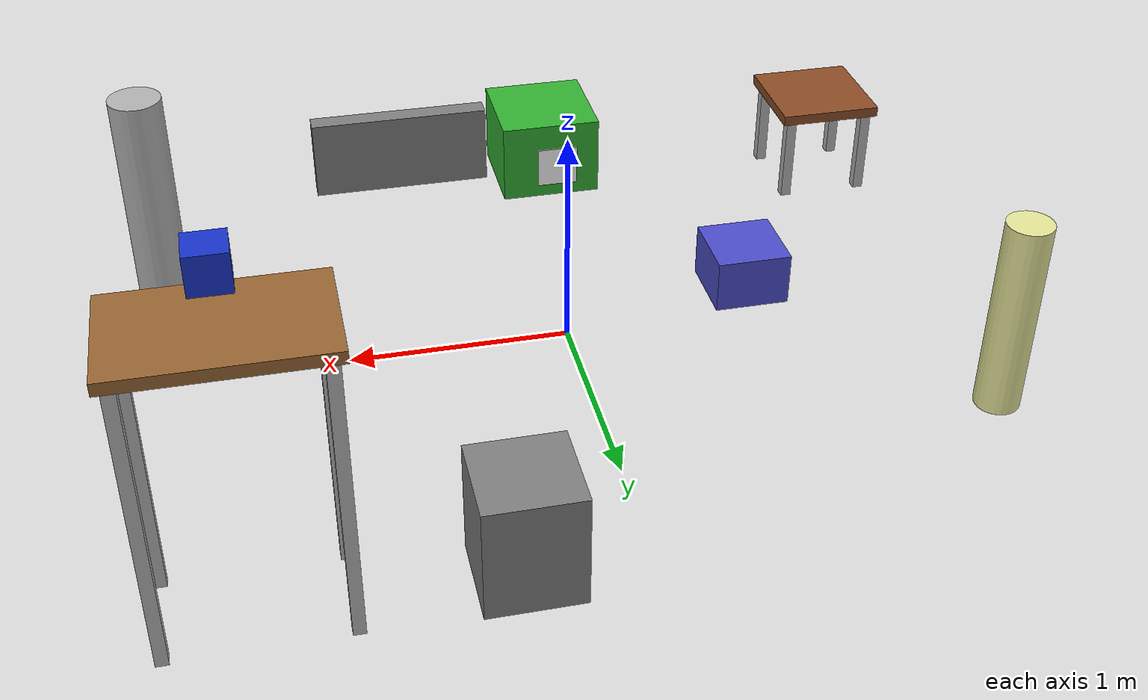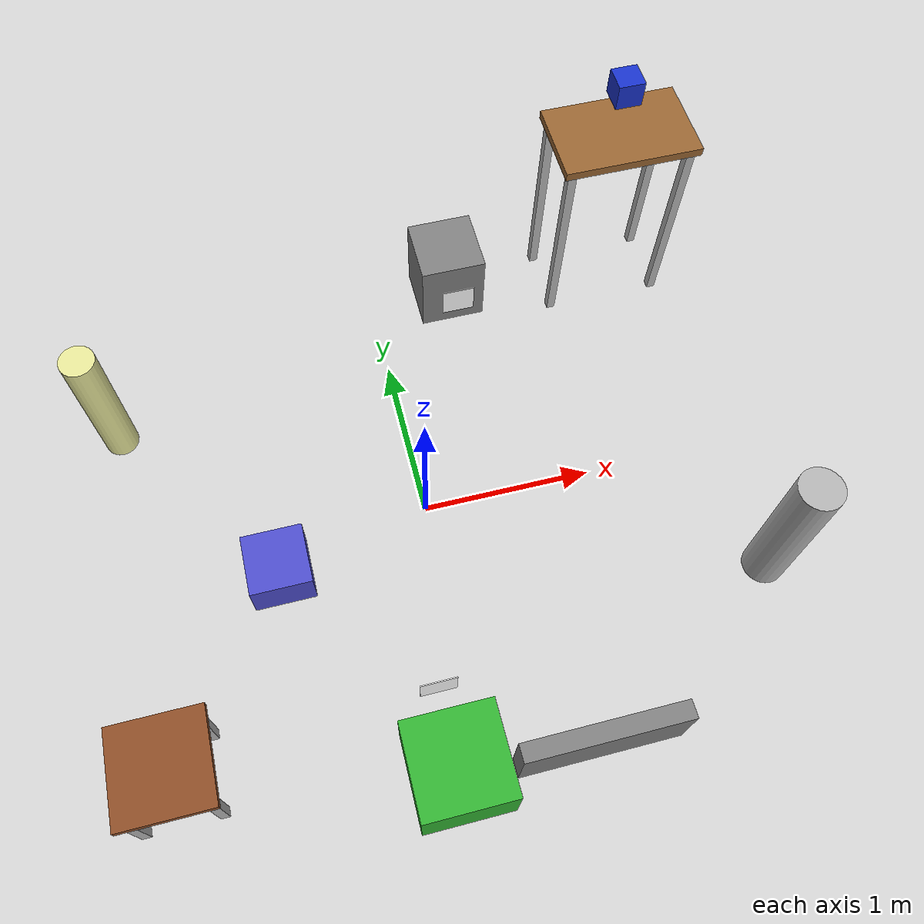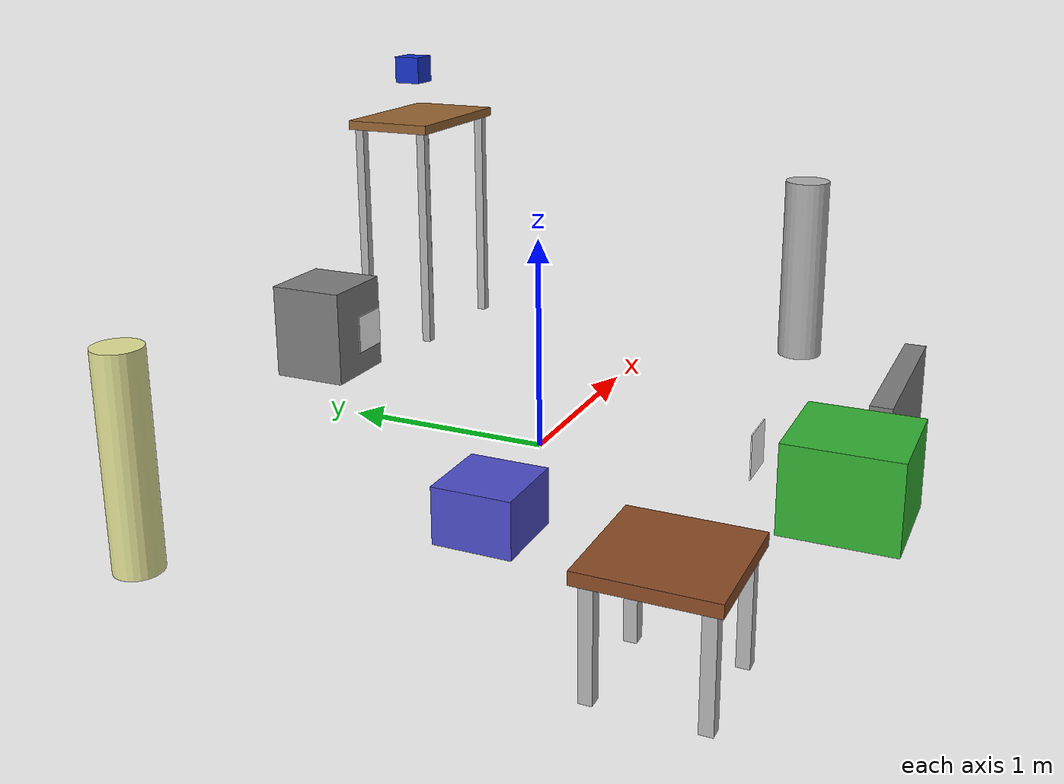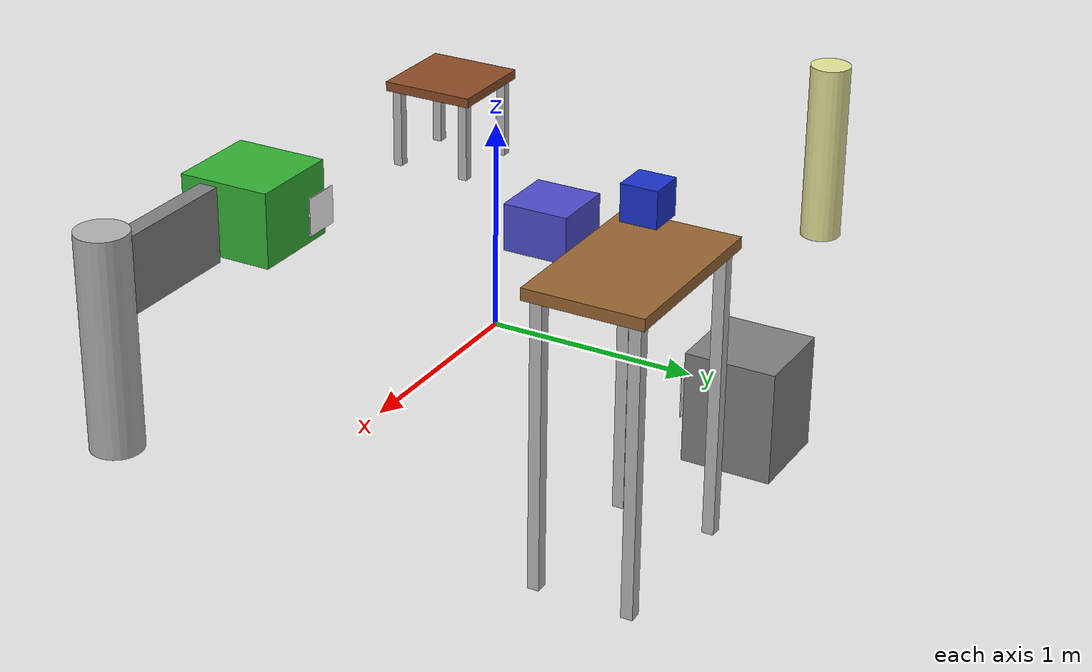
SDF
<sdf version="1.5">
 <world name="leonardo_race_field">
  <physics name="default_physics" default="0" type="ode">
   <gravity>0 0 -9.8066</gravity>
   <ode>
    <solver>
     <type>quick</type>
     <iters>10</iters>
     <sor>1.3</sor>
     <use_dynamic_moi_rescaling>0</use_dynamic_moi_rescaling>
    </solver>
    <constraints>
     <cfm>0</cfm>
     <erp>0.2</erp>
     <contact_max_correcting_vel>100</contact_max_correcting_vel>
     <contact_surface_layer>0.001</contact_surface_layer>
    </constraints>
   </ode>
   <max_step_size>0.004</max_step_size>
   <real_time_factor>1</real_time_factor>
   <real_time_update_rate>250</real_time_update_rate>
   <magnetic_field>6.0e-6 2.3e-5 -4.2e-5</magnetic_field>
  </physics>
  <light type="directional" name="sun">
   <pose>0 0 10 0 0 0</pose>
   <diffuse>0.8 0.8 0.8 1</diffuse>
   <specular>0.2 0.2 0.2 1</specular>
   <attenuation>
    <range>1000</range>
    <constant>0.9</constant>
    <linear>0.01</linear>
    <quadratic>0.001</quadratic>
   </attenuation>
   <direction>-0.5 0.1 -0.9</direction>
  </light>
  <model name="kuka_pedestal">
   <static>true</static>
   <pose>0.5 1.5 0.25 0 0 0</pose>
   <link name="link">
    <collision name="collision"><geometry><box><size>0.4 0.4 0.5</size></box></geometry></collision>
    <visual name="visual">
     <geometry><box><size>0.4 0.4 0.5</size></box></geometry>
     <material><ambient>0.4 0.4 0.4 1</ambient><diffuse>0.5 0.5 0.5 1</diffuse></material>
    </visual>
   </link>
  </model>
  <model name="rack">
   <static>true</static>
   <pose>1.5 1.45 0 0 0 0</pose>
   <link name="rack_link">
    <collision name="top_collision">
     <pose>0 0 1.25 0 0 0</pose>
     <geometry><box><size>0.8 0.5 0.05</size></box></geometry>
    </collision>
    <visual name="top_visual">
     <pose>0 0 1.25 0 0 0</pose>
     <geometry><box><size>0.8 0.5 0.05</size></box></geometry>
     <material><ambient>0.6 0.4 0.2 1</ambient><diffuse>0.6 0.4 0.2 1</diffuse></material>
    </visual>
    <collision name="leg1_collision">
     <pose>0.35 0.20 0.625 0 0 0</pose>
     <geometry><box><size>0.05 0.05 1.25</size></box></geometry>
    </collision>
    <visual name="leg1_visual">
     <pose>0.35 0.20 0.625 0 0 0</pose>
     <geometry><box><size>0.05 0.05 1.25</size></box></geometry>
    </visual>
    <collision name="leg2_collision">
     <pose>0.35 -0.20 0.625 0 0 0</pose>
     <geometry><box><size>0.05 0.05 1.25</size></box></geometry>
    </collision>
    <visual name="leg2_visual">
     <pose>0.35 -0.20 0.625 0 0 0</pose>
     <geometry><box><size>0.05 0.05 1.25</size></box></geometry>
    </visual>
    <collision name="leg3_collision">
     <pose>-0.35 0.20 0.625 0 0 0</pose>
     <geometry><box><size>0.05 0.05 1.25</size></box></geometry>
    </collision>
    <visual name="leg3_visual">
     <pose>-0.35 0.20 0.625 0 0 0</pose>
     <geometry><box><size>0.05 0.05 1.25</size></box></geometry>
    </visual>
    <collision name="leg4_collision">
     <pose>-0.35 -0.20 0.625 0 0 0</pose>
     <geometry><box><size>0.05 0.05 1.25</size></box></geometry>
    </collision>
    <visual name="leg4_visual">
     <pose>-0.35 -0.20 0.625 0 0 0</pose>
     <geometry><box><size>0.05 0.05 1.25</size></box></geometry>
    </visual>
   </link>
  </model>
  <model name="target_box">
   <static>false</static>
   <pose>1.5 1.5 1.535 0 0 0</pose>
   <link name="link">
    <inertial>
     <mass>0.3</mass>
     <inertia><ixx>0.0004</ixx><iyy>0.0004</iyy><izz>0.0004</izz><ixy>0</ixy><ixz>0</ixz><iyz>0</iyz></inertia>
    </inertial>
    <collision name="collision">
     <geometry><box><size>0.15 0.15 0.15</size></box></geometry>
     <surface>
      <friction><ode><mu>1.0</mu><mu2>1.0</mu2></ode></friction>
      <bounce><restitution_coefficient>0.0</restitution_coefficient><threshold>100000.0</threshold></bounce>
      <contact><ode><max_vel>0.0</max_vel><min_depth>0.001</min_depth></ode></contact>
     </surface>
    </collision>
    <visual name="box_visual">
     <geometry><box><size>0.15 0.15 0.15</size></box></geometry>
     <material><ambient>0.1 0.2 0.8 1</ambient><diffuse>0.1 0.2 0.8 1</diffuse></material>
    </visual>
   </link>
  </model>
  <model name="destination_pedestal">
   <static>true</static>
   <pose>-0.2 -1.5 0.2 0 0 0</pose>
   <link name="link">
    <collision name="collision"><geometry><box><size>0.5 0.5 0.4</size></box></geometry></collision>
    <visual name="visual">
     <geometry><box><size>0.5 0.5 0.4</size></box></geometry>
     <material><ambient>0.2 0.7 0.2 1</ambient><diffuse>0.2 0.7 0.2 1</diffuse></material>
    </visual>
   </link>
  </model>
  <model name="obstacle_box_2">
   <static>true</static>
   <pose>-0.9 -0.2 0.125 0 0 0</pose>
   <link name="link">
    <collision name="collision"><geometry><box><size>0.35 0.35 0.25</size></box></geometry></collision>
    <visual name="visual">
     <geometry><box><size>0.35 0.35 0.25</size></box></geometry>
     <material><ambient>0.3 0.3 0.8 1</ambient><diffuse>0.3 0.3 0.8 1</diffuse></material>
    </visual>
   </link>
  </model>
  <model name="column_1">
   <static>true</static>
   <pose>1.8 -0.8 0.5 0 0 0</pose>
   <link name="link">
    <collision name="collision">
     <geometry><cylinder><radius>0.12</radius><length>1.0</length></cylinder></geometry>
    </collision>
    <visual name="visual">
     <geometry><cylinder><radius>0.12</radius><length>1.0</length></cylinder></geometry>
     <material><ambient>0.7 0.7 0.7 1</ambient><diffuse>0.7 0.7 0.7 1</diffuse></material>
    </visual>
   </link>
  </model>
  <model name="column_2">
   <static>true</static>
   <pose>-1.7 0.9 0.45 0 0 0</pose>
   <link name="link">
    <collision name="collision">
     <geometry><cylinder><radius>0.1</radius><length>0.9</length></cylinder></geometry>
    </collision>
    <visual name="visual">
     <geometry><cylinder><radius>0.1</radius><length>0.9</length></cylinder></geometry>
     <material><ambient>0.9 0.9 0.6 1</ambient><diffuse>0.9 0.9 0.6 1</diffuse></material>
    </visual>
   </link>
  </model>
  <model name="low_wall_destination">
   <static>true</static>
   <pose>0.55 -1.55 0.2 0 0 0</pose>
   <link name="link">
    <collision name="collision"><geometry><box><size>0.9 0.1 0.4</size></box></geometry></collision>
    <visual name="visual">
     <geometry><box><size>0.9 0.1 0.4</size></box></geometry>
     <material><ambient>0.5 0.5 0.5 1</ambient><diffuse>0.5 0.5 0.5 1</diffuse></material>
    </visual>
   </link>
  </model>
  <model name="small_table">
   <static>true</static>
   <pose>-1.6 -1.2 0 0 0 0</pose>
   <link name="table_link">
    <collision name="top_collision">
     <pose>0 0 0.45 0 0 0</pose>
     <geometry><box><size>0.5 0.5 0.05</size></box></geometry>
    </collision>
    <visual name="top_visual">
     <pose>0 0 0.45 0 0 0</pose>
     <geometry><box><size>0.5 0.5 0.05</size></box></geometry>
     <material><ambient>0.55 0.3 0.15 1</ambient><diffuse>0.55 0.3 0.15 1</diffuse></material>
    </visual>
    <collision name="leg1_collision">
     <pose>0.2 0.2 0.225 0 0 0</pose>
     <geometry><box><size>0.05 0.05 0.45</size></box></geometry>
    </collision>
    <visual name="leg1_visual">
     <pose>0.2 0.2 0.225 0 0 0</pose>
     <geometry><box><size>0.05 0.05 0.45</size></box></geometry>
    </visual>
    <collision name="leg2_collision">
     <pose>0.2 -0.2 0.225 0 0 0</pose>
     <geometry><box><size>0.05 0.05 0.45</size></box></geometry>
    </collision>
    <visual name="leg2_visual">
     <pose>0.2 -0.2 0.225 0 0 0</pose>
     <geometry><box><size>0.05 0.05 0.45</size></box></geometry>
    </visual>
    <collision name="leg3_collision">
     <pose>-0.2 0.2 0.225 0 0 0</pose>
     <geometry><box><size>0.05 0.05 0.45</size></box></geometry>
    </collision>
    <visual name="leg3_visual">
     <pose>-0.2 0.2 0.225 0 0 0</pose>
     <geometry><box><size>0.05 0.05 0.45</size></box></geometry>
    </visual>
    <collision name="leg4_collision">
     <pose>-0.2 -0.2 0.225 0 0 0</pose>
     <geometry><box><size>0.05 0.05 0.45</size></box></geometry>
    </collision>
    <visual name="leg4_visual">
     <pose>-0.2 -0.2 0.225 0 0 0</pose>
     <geometry><box><size>0.05 0.05 0.45</size></box></geometry>
    </visual>
   </link>
  </model>
  <include><uri>model://aruco_tag2</uri><pose>-0.2 -1.10 0.25 -1.57 -1.57 0</pose></include>
  <include><uri>model://aruco_tag</uri><pose>0.52 1.25 0.25 1.57 -1.57 0</pose></include>
  <plugin filename="gz-sim-physics-system" name="gz::sim::systems::Physics"/>
  <plugin filename="gz-sim-user-commands-system" name="gz::sim::systems::UserCommands"/>
  <plugin filename="gz-sim-scene-broadcaster-system" name="gz::sim::systems::SceneBroadcaster"/>
 </world>
</sdf>

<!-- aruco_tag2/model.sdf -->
<sdf version='1.9'>
  <model name='aruco_tag2'>
    <static>true</static>
    <pose>0 0 1 0 0 0</pose>
    <link name='base'>
      <visual name='base_visual'>
        <geometry>
           <box>
            <size>0.2 0.2 0.005</size>
          </box>
        </geometry>
        <material>
          <diffuse>1 1 1 1</diffuse>
          <specular>0.4 0.4 0.4 1</specular>
          <pbr>
            <metal>
              <albedo_map>aruco-18.png</albedo_map>
            </metal>
          </pbr>
        </material>
      </visual>
    </link>
  </model>
</sdf>

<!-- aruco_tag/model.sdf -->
<sdf version='1.9'>
  <model name='aruco_tag'>
    <static>true</static>
    <pose>0 0 1 0 0 0</pose>
    <link name='base'>
      <visual name='base_visual'>
        <geometry>
           <box>
            <size>0.2 0.2 0.005</size>
          </box>
        </geometry>
        <material>
          <diffuse>1 1 1 1</diffuse>
          <specular>0.4 0.4 0.4 1</specular>
          <pbr>
            <metal>
              <albedo_map>aruco-16.png</albedo_map>
            </metal>
          </pbr>
        </material>
      </visual>
    </link>
  </model>
</sdf>
